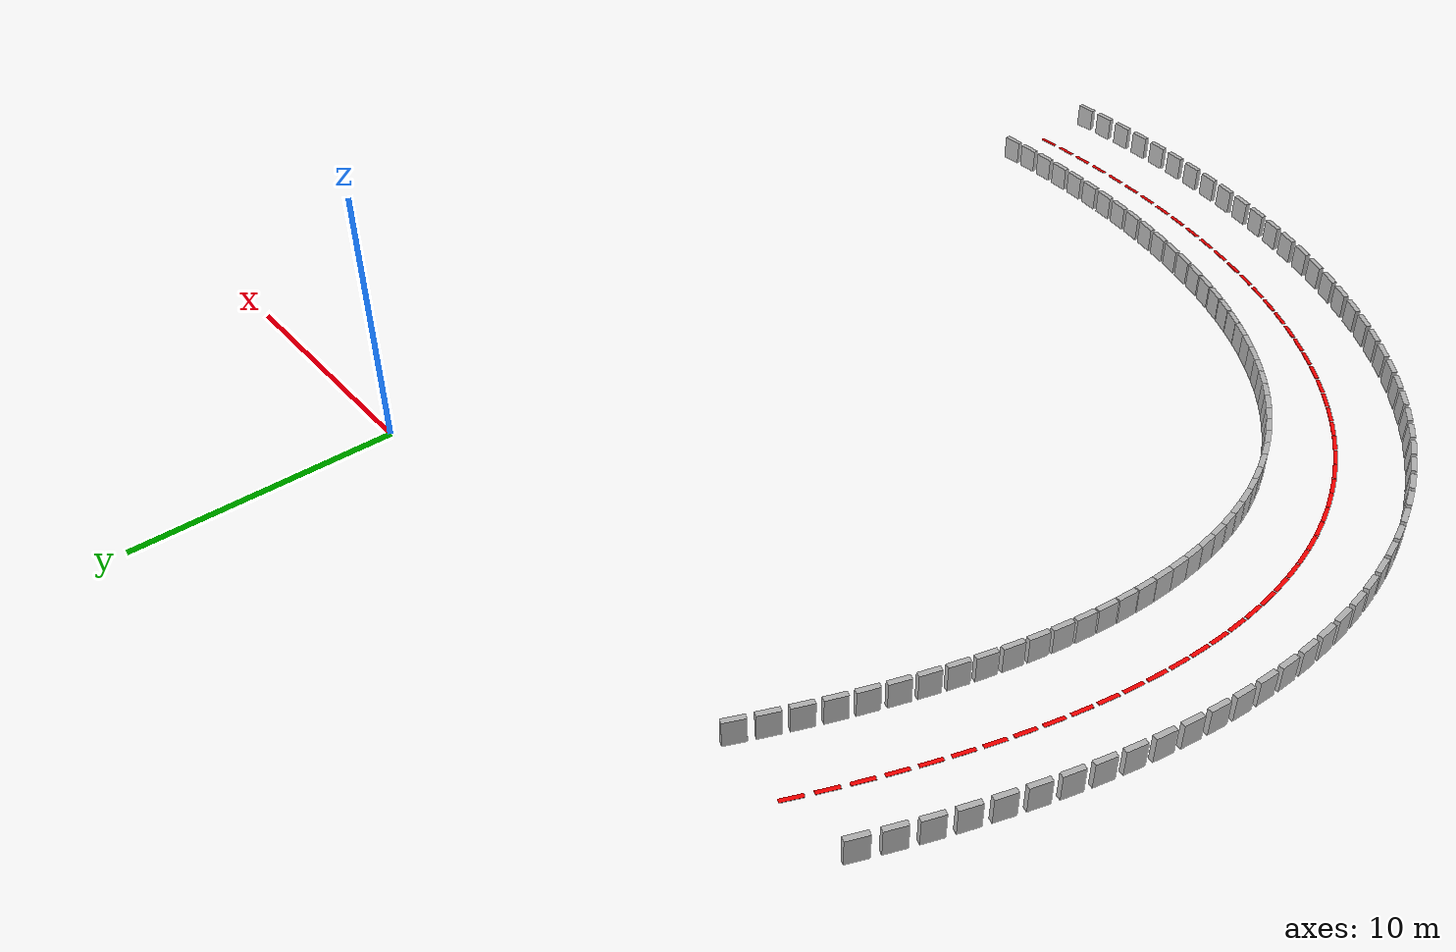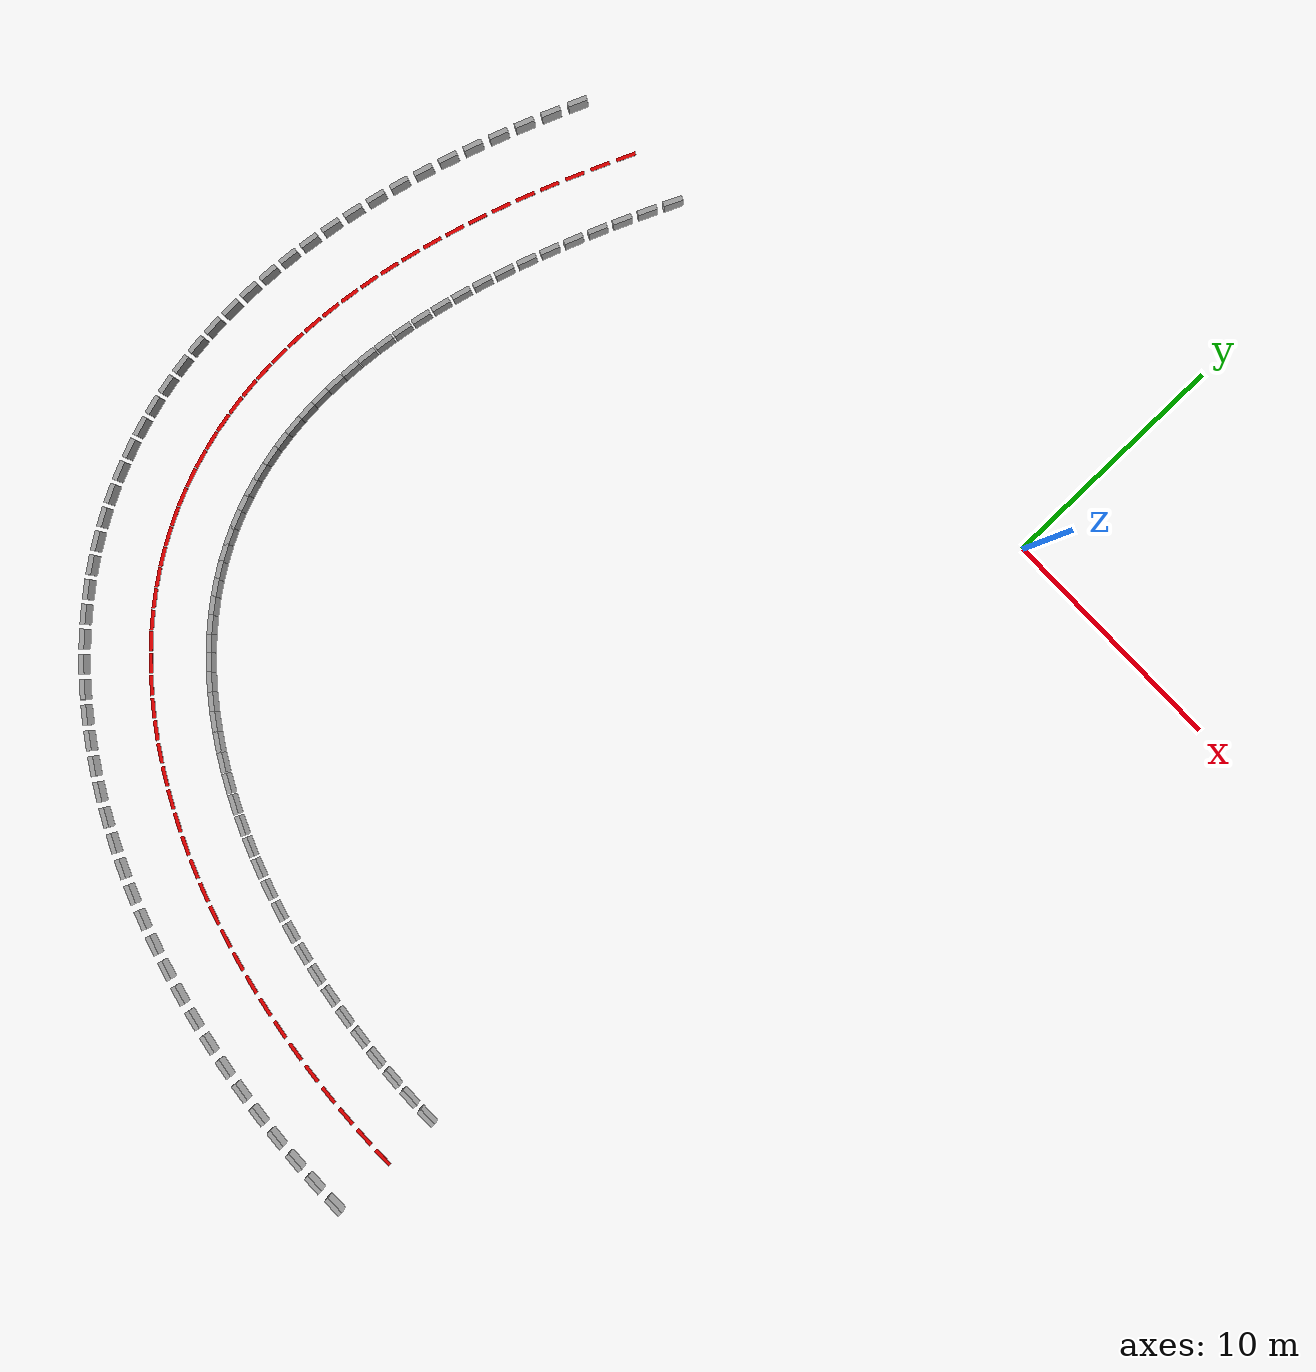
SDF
<sdf version="1.7">
 <model name="track_walls">
  <static>true</static>
  <link name="left_55">
   <pose>-0.289 -37.499 0.5 0 0 3.135</pose>
   <collision name="c"><geometry><box><size>0.8 0.2 1.0</size></box></geometry></collision>
   <visual name="v"><geometry><box><size>0.8 0.2 1.0</size></box></geometry></visual>
  </link>
  <link name="right_55">
   <pose>-0.256 -32.499 0.5 0 0 3.135</pose>
   <collision name="c"><geometry><box><size>0.8 0.2 1.0</size></box></geometry></collision>
   <visual name="v"><geometry><box><size>0.8 0.2 1.0</size></box></geometry></visual>
  </link>
  <link name="center_55">
   <pose>-0.273 -34.999 0.010 0 0 3.135</pose>
   <visual name="v">
    <geometry><box><size>0.8 0.15 0.02</size></box></geometry>
    <material><ambient>1 0 0 1</ambient><diffuse>1 0 0 1</diffuse></material>
   </visual>
  </link>
  <link name="left_56">
   <pose>-1.445 -37.476 0.5 0 0 3.109</pose>
   <collision name="c"><geometry><box><size>0.8 0.2 1.0</size></box></geometry></collision>
   <visual name="v"><geometry><box><size>0.8 0.2 1.0</size></box></geometry></visual>
  </link>
  <link name="right_56">
   <pose>-1.279 -32.479 0.5 0 0 3.109</pose>
   <collision name="c"><geometry><box><size>0.8 0.2 1.0</size></box></geometry></collision>
   <visual name="v"><geometry><box><size>0.8 0.2 1.0</size></box></geometry></visual>
  </link>
  <link name="center_56">
   <pose>-1.362 -34.977 0.010 0 0 3.109</pose>
   <visual name="v">
    <geometry><box><size>0.8 0.15 0.02</size></box></geometry>
    <material><ambient>1 0 0 1</ambient><diffuse>1 0 0 1</diffuse></material>
   </visual>
  </link>
  <link name="left_57">
   <pose>-2.598 -37.423 0.5 0 0 3.082</pose>
   <collision name="c"><geometry><box><size>0.8 0.2 1.0</size></box></geometry></collision>
   <visual name="v"><geometry><box><size>0.8 0.2 1.0</size></box></geometry></visual>
  </link>
  <link name="right_57">
   <pose>-2.300 -32.432 0.5 0 0 3.082</pose>
   <collision name="c"><geometry><box><size>0.8 0.2 1.0</size></box></geometry></collision>
   <visual name="v"><geometry><box><size>0.8 0.2 1.0</size></box></geometry></visual>
  </link>
  <link name="center_57">
   <pose>-2.449 -34.927 0.010 0 0 3.082</pose>
   <visual name="v">
    <geometry><box><size>0.8 0.15 0.02</size></box></geometry>
    <material><ambient>1 0 0 1</ambient><diffuse>1 0 0 1</diffuse></material>
   </visual>
  </link>
  <link name="left_58">
   <pose>-3.747 -37.339 0.5 0 0 3.055</pose>
   <collision name="c"><geometry><box><size>0.8 0.2 1.0</size></box></geometry></collision>
   <visual name="v"><geometry><box><size>0.8 0.2 1.0</size></box></geometry></visual>
  </link>
  <link name="right_58">
   <pose>-3.316 -32.357 0.5 0 0 3.055</pose>
   <collision name="c"><geometry><box><size>0.8 0.2 1.0</size></box></geometry></collision>
   <visual name="v"><geometry><box><size>0.8 0.2 1.0</size></box></geometry></visual>
  </link>
  <link name="center_58">
   <pose>-3.532 -34.848 0.010 0 0 3.055</pose>
   <visual name="v">
    <geometry><box><size>0.8 0.15 0.02</size></box></geometry>
    <material><ambient>1 0 0 1</ambient><diffuse>1 0 0 1</diffuse></material>
   </visual>
  </link>
  <link name="left_59">
   <pose>-4.891 -37.224 0.5 0 0 3.028</pose>
   <collision name="c"><geometry><box><size>0.8 0.2 1.0</size></box></geometry></collision>
   <visual name="v"><geometry><box><size>0.8 0.2 1.0</size></box></geometry></visual>
  </link>
  <link name="right_59">
   <pose>-4.325 -32.256 0.5 0 0 3.028</pose>
   <collision name="c"><geometry><box><size>0.8 0.2 1.0</size></box></geometry></collision>
   <visual name="v"><geometry><box><size>0.8 0.2 1.0</size></box></geometry></visual>
  </link>
  <link name="center_59">
   <pose>-4.608 -34.740 0.010 0 0 3.028</pose>
   <visual name="v">
    <geometry><box><size>0.8 0.15 0.02</size></box></geometry>
    <material><ambient>1 0 0 1</ambient><diffuse>1 0 0 1</diffuse></material>
   </visual>
  </link>
  <link name="left_60">
   <pose>-6.026 -37.079 0.5 0 0 3.001</pose>
   <collision name="c"><geometry><box><size>0.8 0.2 1.0</size></box></geometry></collision>
   <visual name="v"><geometry><box><size>0.8 0.2 1.0</size></box></geometry></visual>
  </link>
  <link name="right_60">
   <pose>-5.324 -32.128 0.5 0 0 3.001</pose>
   <collision name="c"><geometry><box><size>0.8 0.2 1.0</size></box></geometry></collision>
   <visual name="v"><geometry><box><size>0.8 0.2 1.0</size></box></geometry></visual>
  </link>
  <link name="center_60">
   <pose>-5.675 -34.604 0.010 0 0 3.001</pose>
   <visual name="v">
    <geometry><box><size>0.8 0.15 0.02</size></box></geometry>
    <material><ambient>1 0 0 1</ambient><diffuse>1 0 0 1</diffuse></material>
   </visual>
  </link>
  <link name="left_61">
   <pose>-7.152 -36.903 0.5 0 0 2.973</pose>
   <collision name="c"><geometry><box><size>0.8 0.2 1.0</size></box></geometry></collision>
   <visual name="v"><geometry><box><size>0.8 0.2 1.0</size></box></geometry></visual>
  </link>
  <link name="right_61">
   <pose>-6.312 -31.974 0.5 0 0 2.973</pose>
   <collision name="c"><geometry><box><size>0.8 0.2 1.0</size></box></geometry></collision>
   <visual name="v"><geometry><box><size>0.8 0.2 1.0</size></box></geometry></visual>
  </link>
  <link name="center_61">
   <pose>-6.732 -34.439 0.010 0 0 2.973</pose>
   <visual name="v">
    <geometry><box><size>0.8 0.15 0.02</size></box></geometry>
    <material><ambient>1 0 0 1</ambient><diffuse>1 0 0 1</diffuse></material>
   </visual>
  </link>
  <link name="left_62">
   <pose>-8.266 -36.697 0.5 0 0 2.944</pose>
   <collision name="c"><geometry><box><size>0.8 0.2 1.0</size></box></geometry></collision>
   <visual name="v"><geometry><box><size>0.8 0.2 1.0</size></box></geometry></visual>
  </link>
  <link name="right_62">
   <pose>-7.286 -31.794 0.5 0 0 2.944</pose>
   <collision name="c"><geometry><box><size>0.8 0.2 1.0</size></box></geometry></collision>
   <visual name="v"><geometry><box><size>0.8 0.2 1.0</size></box></geometry></visual>
  </link>
  <link name="center_62">
   <pose>-7.776 -34.246 0.010 0 0 2.944</pose>
   <visual name="v">
    <geometry><box><size>0.8 0.15 0.02</size></box></geometry>
    <material><ambient>1 0 0 1</ambient><diffuse>1 0 0 1</diffuse></material>
   </visual>
  </link>
  <link name="left_63">
   <pose>-9.367 -36.460 0.5 0 0 2.915</pose>
   <collision name="c"><geometry><box><size>0.8 0.2 1.0</size></box></geometry></collision>
   <visual name="v"><geometry><box><size>0.8 0.2 1.0</size></box></geometry></visual>
  </link>
  <link name="right_63">
   <pose>-8.245 -31.588 0.5 0 0 2.915</pose>
   <collision name="c"><geometry><box><size>0.8 0.2 1.0</size></box></geometry></collision>
   <visual name="v"><geometry><box><size>0.8 0.2 1.0</size></box></geometry></visual>
  </link>
  <link name="center_63">
   <pose>-8.806 -34.024 0.010 0 0 2.915</pose>
   <visual name="v">
    <geometry><box><size>0.8 0.15 0.02</size></box></geometry>
    <material><ambient>1 0 0 1</ambient><diffuse>1 0 0 1</diffuse></material>
   </visual>
  </link>
  <link name="left_64">
   <pose>-10.454 -36.193 0.5 0 0 2.885</pose>
   <collision name="c"><geometry><box><size>0.8 0.2 1.0</size></box></geometry></collision>
   <visual name="v"><geometry><box><size>0.8 0.2 1.0</size></box></geometry></visual>
  </link>
  <link name="right_64">
   <pose>-9.186 -31.356 0.5 0 0 2.885</pose>
   <collision name="c"><geometry><box><size>0.8 0.2 1.0</size></box></geometry></collision>
   <visual name="v"><geometry><box><size>0.8 0.2 1.0</size></box></geometry></visual>
  </link>
  <link name="center_64">
   <pose>-9.820 -33.775 0.010 0 0 2.885</pose>
   <visual name="v">
    <geometry><box><size>0.8 0.15 0.02</size></box></geometry>
    <material><ambient>1 0 0 1</ambient><diffuse>1 0 0 1</diffuse></material>
   </visual>
  </link>
  <link name="left_65">
   <pose>-11.523 -35.895 0.5 0 0 2.855</pose>
   <collision name="c"><geometry><box><size>0.8 0.2 1.0</size></box></geometry></collision>
   <visual name="v"><geometry><box><size>0.8 0.2 1.0</size></box></geometry></visual>
  </link>
  <link name="right_65">
   <pose>-10.108 -31.100 0.5 0 0 2.855</pose>
   <collision name="c"><geometry><box><size>0.8 0.2 1.0</size></box></geometry></collision>
   <visual name="v"><geometry><box><size>0.8 0.2 1.0</size></box></geometry></visual>
  </link>
  <link name="center_65">
   <pose>-10.815 -33.497 0.010 0 0 2.855</pose>
   <visual name="v">
    <geometry><box><size>0.8 0.15 0.02</size></box></geometry>
    <material><ambient>1 0 0 1</ambient><diffuse>1 0 0 1</diffuse></material>
   </visual>
  </link>
  <link name="left_66">
   <pose>-12.575 -35.567 0.5 0 0 2.823</pose>
   <collision name="c"><geometry><box><size>0.8 0.2 1.0</size></box></geometry></collision>
   <visual name="v"><geometry><box><size>0.8 0.2 1.0</size></box></geometry></visual>
  </link>
  <link name="right_66">
   <pose>-11.008 -30.819 0.5 0 0 2.823</pose>
   <collision name="c"><geometry><box><size>0.8 0.2 1.0</size></box></geometry></collision>
   <visual name="v"><geometry><box><size>0.8 0.2 1.0</size></box></geometry></visual>
  </link>
  <link name="center_66">
   <pose>-11.791 -33.193 0.010 0 0 2.823</pose>
   <visual name="v">
    <geometry><box><size>0.8 0.15 0.02</size></box></geometry>
    <material><ambient>1 0 0 1</ambient><diffuse>1 0 0 1</diffuse></material>
   </visual>
  </link>
  <link name="left_67">
   <pose>-13.606 -35.208 0.5 0 0 2.790</pose>
   <collision name="c"><geometry><box><size>0.8 0.2 1.0</size></box></geometry></collision>
   <visual name="v"><geometry><box><size>0.8 0.2 1.0</size></box></geometry></visual>
  </link>
  <link name="right_67">
   <pose>-11.885 -30.513 0.5 0 0 2.790</pose>
   <collision name="c"><geometry><box><size>0.8 0.2 1.0</size></box></geometry></collision>
   <visual name="v"><geometry><box><size>0.8 0.2 1.0</size></box></geometry></visual>
  </link>
  <link name="center_67">
   <pose>-12.745 -32.861 0.010 0 0 2.790</pose>
   <visual name="v">
    <geometry><box><size>0.8 0.15 0.02</size></box></geometry>
    <material><ambient>1 0 0 1</ambient><diffuse>1 0 0 1</diffuse></material>
   </visual>
  </link>
  <link name="left_68">
   <pose>-14.616 -34.818 0.5 0 0 2.756</pose>
   <collision name="c"><geometry><box><size>0.8 0.2 1.0</size></box></geometry></collision>
   <visual name="v"><geometry><box><size>0.8 0.2 1.0</size></box></geometry></visual>
  </link>
  <link name="right_68">
   <pose>-12.737 -30.185 0.5 0 0 2.756</pose>
   <collision name="c"><geometry><box><size>0.8 0.2 1.0</size></box></geometry></collision>
   <visual name="v"><geometry><box><size>0.8 0.2 1.0</size></box></geometry></visual>
  </link>
  <link name="center_68">
   <pose>-13.676 -32.501 0.010 0 0 2.756</pose>
   <visual name="v">
    <geometry><box><size>0.8 0.15 0.02</size></box></geometry>
    <material><ambient>1 0 0 1</ambient><diffuse>1 0 0 1</diffuse></material>
   </visual>
  </link>
  <link name="left_69">
   <pose>-15.603 -34.398 0.5 0 0 2.721</pose>
   <collision name="c"><geometry><box><size>0.8 0.2 1.0</size></box></geometry></collision>
   <visual name="v"><geometry><box><size>0.8 0.2 1.0</size></box></geometry></visual>
  </link>
  <link name="right_69">
   <pose>-13.562 -29.833 0.5 0 0 2.721</pose>
   <collision name="c"><geometry><box><size>0.8 0.2 1.0</size></box></geometry></collision>
   <visual name="v"><geometry><box><size>0.8 0.2 1.0</size></box></geometry></visual>
  </link>
  <link name="center_69">
   <pose>-14.582 -32.115 0.010 0 0 2.721</pose>
   <visual name="v">
    <geometry><box><size>0.8 0.15 0.02</size></box></geometry>
    <material><ambient>1 0 0 1</ambient><diffuse>1 0 0 1</diffuse></material>
   </visual>
  </link>
  <link name="left_70">
   <pose>-16.565 -33.947 0.5 0 0 2.685</pose>
   <collision name="c"><geometry><box><size>0.8 0.2 1.0</size></box></geometry></collision>
   <visual name="v"><geometry><box><size>0.8 0.2 1.0</size></box></geometry></visual>
  </link>
  <link name="right_70">
   <pose>-14.360 -29.459 0.5 0 0 2.685</pose>
   <collision name="c"><geometry><box><size>0.8 0.2 1.0</size></box></geometry></collision>
   <visual name="v"><geometry><box><size>0.8 0.2 1.0</size></box></geometry></visual>
  </link>
  <link name="center_70">
   <pose>-15.462 -31.703 0.010 0 0 2.685</pose>
   <visual name="v">
    <geometry><box><size>0.8 0.15 0.02</size></box></geometry>
    <material><ambient>1 0 0 1</ambient><diffuse>1 0 0 1</diffuse></material>
   </visual>
  </link>
  <link name="left_71">
   <pose>-17.500 -33.465 0.5 0 0 2.647</pose>
   <collision name="c"><geometry><box><size>0.8 0.2 1.0</size></box></geometry></collision>
   <visual name="v"><geometry><box><size>0.8 0.2 1.0</size></box></geometry></visual>
  </link>
  <link name="right_71">
   <pose>-15.127 -29.064 0.5 0 0 2.647</pose>
   <collision name="c"><geometry><box><size>0.8 0.2 1.0</size></box></geometry></collision>
   <visual name="v"><geometry><box><size>0.8 0.2 1.0</size></box></geometry></visual>
  </link>
  <link name="center_71">
   <pose>-16.314 -31.265 0.010 0 0 2.647</pose>
   <visual name="v">
    <geometry><box><size>0.8 0.15 0.02</size></box></geometry>
    <material><ambient>1 0 0 1</ambient><diffuse>1 0 0 1</diffuse></material>
   </visual>
  </link>
  <link name="left_72">
   <pose>-18.408 -32.953 0.5 0 0 2.608</pose>
   <collision name="c"><geometry><box><size>0.8 0.2 1.0</size></box></geometry></collision>
   <visual name="v"><geometry><box><size>0.8 0.2 1.0</size></box></geometry></visual>
  </link>
  <link name="right_72">
   <pose>-15.865 -28.648 0.5 0 0 2.608</pose>
   <collision name="c"><geometry><box><size>0.8 0.2 1.0</size></box></geometry></collision>
   <visual name="v"><geometry><box><size>0.8 0.2 1.0</size></box></geometry></visual>
  </link>
  <link name="center_72">
   <pose>-17.136 -30.800 0.010 0 0 2.608</pose>
   <visual name="v">
    <geometry><box><size>0.8 0.15 0.02</size></box></geometry>
    <material><ambient>1 0 0 1</ambient><diffuse>1 0 0 1</diffuse></material>
   </visual>
  </link>
  <link name="left_73">
   <pose>-19.286 -32.410 0.5 0 0 2.567</pose>
   <collision name="c"><geometry><box><size>0.8 0.2 1.0</size></box></geometry></collision>
   <visual name="v"><geometry><box><size>0.8 0.2 1.0</size></box></geometry></visual>
  </link>
  <link name="right_73">
   <pose>-16.570 -28.212 0.5 0 0 2.567</pose>
   <collision name="c"><geometry><box><size>0.8 0.2 1.0</size></box></geometry></collision>
   <visual name="v"><geometry><box><size>0.8 0.2 1.0</size></box></geometry></visual>
  </link>
  <link name="center_73">
   <pose>-17.928 -30.311 0.010 0 0 2.567</pose>
   <visual name="v">
    <geometry><box><size>0.8 0.15 0.02</size></box></geometry>
    <material><ambient>1 0 0 1</ambient><diffuse>1 0 0 1</diffuse></material>
   </visual>
  </link>
  <link name="left_74">
   <pose>-20.133 -31.836 0.5 0 0 2.525</pose>
   <collision name="c"><geometry><box><size>0.8 0.2 1.0</size></box></geometry></collision>
   <visual name="v"><geometry><box><size>0.8 0.2 1.0</size></box></geometry></visual>
  </link>
  <link name="right_74">
   <pose>-17.243 -27.756 0.5 0 0 2.525</pose>
   <collision name="c"><geometry><box><size>0.8 0.2 1.0</size></box></geometry></collision>
   <visual name="v"><geometry><box><size>0.8 0.2 1.0</size></box></geometry></visual>
  </link>
  <link name="center_74">
   <pose>-18.688 -29.796 0.010 0 0 2.525</pose>
   <visual name="v">
    <geometry><box><size>0.8 0.15 0.02</size></box></geometry>
    <material><ambient>1 0 0 1</ambient><diffuse>1 0 0 1</diffuse></material>
   </visual>
  </link>
  <link name="left_75">
   <pose>-20.948 -31.232 0.5 0 0 2.482</pose>
   <collision name="c"><geometry><box><size>0.8 0.2 1.0</size></box></geometry></collision>
   <visual name="v"><geometry><box><size>0.8 0.2 1.0</size></box></geometry></visual>
  </link>
  <link name="right_75">
   <pose>-17.882 -27.282 0.5 0 0 2.482</pose>
   <collision name="c"><geometry><box><size>0.8 0.2 1.0</size></box></geometry></collision>
   <visual name="v"><geometry><box><size>0.8 0.2 1.0</size></box></geometry></visual>
  </link>
  <link name="center_75">
   <pose>-19.415 -29.257 0.010 0 0 2.482</pose>
   <visual name="v">
    <geometry><box><size>0.8 0.15 0.02</size></box></geometry>
    <material><ambient>1 0 0 1</ambient><diffuse>1 0 0 1</diffuse></material>
   </visual>
  </link>
  <link name="left_76">
   <pose>-21.729 -30.598 0.5 0 0 2.436</pose>
   <collision name="c"><geometry><box><size>0.8 0.2 1.0</size></box></geometry></collision>
   <visual name="v"><geometry><box><size>0.8 0.2 1.0</size></box></geometry></visual>
  </link>
  <link name="right_76">
   <pose>-18.488 -26.791 0.5 0 0 2.436</pose>
   <collision name="c"><geometry><box><size>0.8 0.2 1.0</size></box></geometry></collision>
   <visual name="v"><geometry><box><size>0.8 0.2 1.0</size></box></geometry></visual>
  </link>
  <link name="center_76">
   <pose>-20.108 -28.694 0.010 0 0 2.436</pose>
   <visual name="v">
    <geometry><box><size>0.8 0.15 0.02</size></box></geometry>
    <material><ambient>1 0 0 1</ambient><diffuse>1 0 0 1</diffuse></material>
   </visual>
  </link>
  <link name="left_77">
   <pose>-22.473 -29.934 0.5 0 0 2.390</pose>
   <collision name="c"><geometry><box><size>0.8 0.2 1.0</size></box></geometry></collision>
   <visual name="v"><geometry><box><size>0.8 0.2 1.0</size></box></geometry></visual>
  </link>
  <link name="right_77">
   <pose>-19.058 -26.282 0.5 0 0 2.390</pose>
   <collision name="c"><geometry><box><size>0.8 0.2 1.0</size></box></geometry></collision>
   <visual name="v"><geometry><box><size>0.8 0.2 1.0</size></box></geometry></visual>
  </link>
  <link name="center_77">
   <pose>-20.766 -28.108 0.010 0 0 2.390</pose>
   <visual name="v">
    <geometry><box><size>0.8 0.15 0.02</size></box></geometry>
    <material><ambient>1 0 0 1</ambient><diffuse>1 0 0 1</diffuse></material>
   </visual>
  </link>
  <link name="left_78">
   <pose>-23.181 -29.240 0.5 0 0 2.342</pose>
   <collision name="c"><geometry><box><size>0.8 0.2 1.0</size></box></geometry></collision>
   <visual name="v"><geometry><box><size>0.8 0.2 1.0</size></box></geometry></visual>
  </link>
  <link name="right_78">
   <pose>-19.595 -25.756 0.5 0 0 2.342</pose>
   <collision name="c"><geometry><box><size>0.8 0.2 1.0</size></box></geometry></collision>
   <visual name="v"><geometry><box><size>0.8 0.2 1.0</size></box></geometry></visual>
  </link>
  <link name="center_78">
   <pose>-21.388 -27.498 0.010 0 0 2.342</pose>
   <visual name="v">
    <geometry><box><size>0.8 0.15 0.02</size></box></geometry>
    <material><ambient>1 0 0 1</ambient><diffuse>1 0 0 1</diffuse></material>
   </visual>
  </link>
  <link name="left_79">
   <pose>-23.850 -28.517 0.5 0 0 2.292</pose>
   <collision name="c"><geometry><box><size>0.8 0.2 1.0</size></box></geometry></collision>
   <visual name="v"><geometry><box><size>0.8 0.2 1.0</size></box></geometry></visual>
  </link>
  <link name="right_79">
   <pose>-20.096 -25.214 0.5 0 0 2.292</pose>
   <collision name="c"><geometry><box><size>0.8 0.2 1.0</size></box></geometry></collision>
   <visual name="v"><geometry><box><size>0.8 0.2 1.0</size></box></geometry></visual>
  </link>
  <link name="center_79">
   <pose>-21.973 -26.865 0.010 0 0 2.292</pose>
   <visual name="v">
    <geometry><box><size>0.8 0.15 0.02</size></box></geometry>
    <material><ambient>1 0 0 1</ambient><diffuse>1 0 0 1</diffuse></material>
   </visual>
  </link>
  <link name="left_80">
   <pose>-24.478 -27.765 0.5 0 0 2.242</pose>
   <collision name="c"><geometry><box><size>0.8 0.2 1.0</size></box></geometry></collision>
   <visual name="v"><geometry><box><size>0.8 0.2 1.0</size></box></geometry></visual>
  </link>
  <link name="right_80">
   <pose>-20.562 -24.656 0.5 0 0 2.242</pose>
   <collision name="c"><geometry><box><size>0.8 0.2 1.0</size></box></geometry></collision>
   <visual name="v"><geometry><box><size>0.8 0.2 1.0</size></box></geometry></visual>
  </link>
  <link name="center_80">
   <pose>-22.520 -26.211 0.010 0 0 2.242</pose>
   <visual name="v">
    <geometry><box><size>0.8 0.15 0.02</size></box></geometry>
    <material><ambient>1 0 0 1</ambient><diffuse>1 0 0 1</diffuse></material>
   </visual>
  </link>
  <link name="left_81">
   <pose>-25.065 -26.987 0.5 0 0 2.191</pose>
   <collision name="c"><geometry><box><size>0.8 0.2 1.0</size></box></geometry></collision>
   <visual name="v"><geometry><box><size>0.8 0.2 1.0</size></box></geometry></visual>
  </link>
  <link name="right_81">
   <pose>-20.995 -24.082 0.5 0 0 2.191</pose>
   <collision name="c"><geometry><box><size>0.8 0.2 1.0</size></box></geometry></collision>
   <visual name="v"><geometry><box><size>0.8 0.2 1.0</size></box></geometry></visual>
  </link>
  <link name="center_81">
   <pose>-23.030 -25.535 0.010 0 0 2.191</pose>
   <visual name="v">
    <geometry><box><size>0.8 0.15 0.02</size></box></geometry>
    <material><ambient>1 0 0 1</ambient><diffuse>1 0 0 1</diffuse></material>
   </visual>
  </link>
  <link name="left_82">
   <pose>-25.608 -26.182 0.5 0 0 2.139</pose>
   <collision name="c"><geometry><box><size>0.8 0.2 1.0</size></box></geometry></collision>
   <visual name="v"><geometry><box><size>0.8 0.2 1.0</size></box></geometry></visual>
  </link>
  <link name="right_82">
   <pose>-21.392 -23.493 0.5 0 0 2.139</pose>
   <collision name="c"><geometry><box><size>0.8 0.2 1.0</size></box></geometry></collision>
   <visual name="v"><geometry><box><size>0.8 0.2 1.0</size></box></geometry></visual>
  </link>
  <link name="center_82">
   <pose>-23.500 -24.837 0.010 0 0 2.139</pose>
   <visual name="v">
    <geometry><box><size>0.8 0.15 0.02</size></box></geometry>
    <material><ambient>1 0 0 1</ambient><diffuse>1 0 0 1</diffuse></material>
   </visual>
  </link>
  <link name="left_83">
   <pose>-26.107 -25.351 0.5 0 0 2.086</pose>
   <collision name="c"><geometry><box><size>0.8 0.2 1.0</size></box></geometry></collision>
   <visual name="v"><geometry><box><size>0.8 0.2 1.0</size></box></geometry></visual>
  </link>
  <link name="right_83">
   <pose>-21.756 -22.888 0.5 0 0 2.086</pose>
   <collision name="c"><geometry><box><size>0.8 0.2 1.0</size></box></geometry></collision>
   <visual name="v"><geometry><box><size>0.8 0.2 1.0</size></box></geometry></visual>
  </link>
  <link name="center_83">
   <pose>-23.932 -24.120 0.010 0 0 2.086</pose>
   <visual name="v">
    <geometry><box><size>0.8 0.15 0.02</size></box></geometry>
    <material><ambient>1 0 0 1</ambient><diffuse>1 0 0 1</diffuse></material>
   </visual>
  </link>
  <link name="left_84">
   <pose>-26.562 -24.497 0.5 0 0 2.033</pose>
   <collision name="c"><geometry><box><size>0.8 0.2 1.0</size></box></geometry></collision>
   <visual name="v"><geometry><box><size>0.8 0.2 1.0</size></box></geometry></visual>
  </link>
  <link name="right_84">
   <pose>-22.087 -22.267 0.5 0 0 2.033</pose>
   <collision name="c"><geometry><box><size>0.8 0.2 1.0</size></box></geometry></collision>
   <visual name="v"><geometry><box><size>0.8 0.2 1.0</size></box></geometry></visual>
  </link>
  <link name="center_84">
   <pose>-24.324 -23.382 0.010 0 0 2.033</pose>
   <visual name="v">
    <geometry><box><size>0.8 0.15 0.02</size></box></geometry>
    <material><ambient>1 0 0 1</ambient><diffuse>1 0 0 1</diffuse></material>
   </visual>
  </link>
  <link name="left_85">
   <pose>-26.970 -23.621 0.5 0 0 1.980</pose>
   <collision name="c"><geometry><box><size>0.8 0.2 1.0</size></box></geometry></collision>
   <visual name="v"><geometry><box><size>0.8 0.2 1.0</size></box></geometry></visual>
  </link>
  <link name="right_85">
   <pose>-22.383 -21.630 0.5 0 0 1.980</pose>
   <collision name="c"><geometry><box><size>0.8 0.2 1.0</size></box></geometry></collision>
   <visual name="v"><geometry><box><size>0.8 0.2 1.0</size></box></geometry></visual>
  </link>
  <link name="center_85">
   <pose>-24.677 -22.626 0.010 0 0 1.980</pose>
   <visual name="v">
    <geometry><box><size>0.8 0.15 0.02</size></box></geometry>
    <material><ambient>1 0 0 1</ambient><diffuse>1 0 0 1</diffuse></material>
   </visual>
  </link>
  <link name="left_86">
   <pose>-27.331 -22.725 0.5 0 0 1.928</pose>
   <collision name="c"><geometry><box><size>0.8 0.2 1.0</size></box></geometry></collision>
   <visual name="v"><geometry><box><size>0.8 0.2 1.0</size></box></geometry></visual>
  </link>
  <link name="right_86">
   <pose>-22.647 -20.976 0.5 0 0 1.928</pose>
   <collision name="c"><geometry><box><size>0.8 0.2 1.0</size></box></geometry></collision>
   <visual name="v"><geometry><box><size>0.8 0.2 1.0</size></box></geometry></visual>
  </link>
  <link name="center_86">
   <pose>-24.989 -21.850 0.010 0 0 1.928</pose>
   <visual name="v">
    <geometry><box><size>0.8 0.15 0.02</size></box></geometry>
    <material><ambient>1 0 0 1</ambient><diffuse>1 0 0 1</diffuse></material>
   </visual>
  </link>
  <link name="left_87">
   <pose>-27.646 -21.809 0.5 0 0 1.876</pose>
   <collision name="c"><geometry><box><size>0.8 0.2 1.0</size></box></geometry></collision>
   <visual name="v"><geometry><box><size>0.8 0.2 1.0</size></box></geometry></visual>
  </link>
  <link name="right_87">
   <pose>-22.878 -20.305 0.5 0 0 1.876</pose>
   <collision name="c"><geometry><box><size>0.8 0.2 1.0</size></box></geometry></collision>
   <visual name="v"><geometry><box><size>0.8 0.2 1.0</size></box></geometry></visual>
  </link>
  <link name="center_87">
   <pose>-25.262 -21.057 0.010 0 0 1.876</pose>
   <visual name="v">
    <geometry><box><size>0.8 0.15 0.02</size></box></geometry>
    <material><ambient>1 0 0 1</ambient><diffuse>1 0 0 1</diffuse></material>
   </visual>
  </link>
  <link name="left_88">
   <pose>-27.915 -20.876 0.5 0 0 1.826</pose>
   <collision name="c"><geometry><box><size>0.8 0.2 1.0</size></box></geometry></collision>
   <visual name="v"><geometry><box><size>0.8 0.2 1.0</size></box></geometry></visual>
  </link>
  <link name="right_88">
   <pose>-23.076 -19.616 0.5 0 0 1.826</pose>
   <collision name="c"><geometry><box><size>0.8 0.2 1.0</size></box></geometry></collision>
   <visual name="v"><geometry><box><size>0.8 0.2 1.0</size></box></geometry></visual>
  </link>
  <link name="center_88">
   <pose>-25.495 -20.246 0.010 0 0 1.826</pose>
   <visual name="v">
    <geometry><box><size>0.8 0.15 0.02</size></box></geometry>
    <material><ambient>1 0 0 1</ambient><diffuse>1 0 0 1</diffuse></material>
   </visual>
  </link>
  <link name="left_89">
   <pose>-28.136 -19.928 0.5 0 0 1.776</pose>
   <collision name="c"><geometry><box><size>0.8 0.2 1.0</size></box></geometry></collision>
   <visual name="v"><geometry><box><size>0.8 0.2 1.0</size></box></geometry></visual>
  </link>
  <link name="right_89">
   <pose>-23.241 -18.910 0.5 0 0 1.776</pose>
   <collision name="c"><geometry><box><size>0.8 0.2 1.0</size></box></geometry></collision>
   <visual name="v"><geometry><box><size>0.8 0.2 1.0</size></box></geometry></visual>
  </link>
  <link name="center_89">
   <pose>-25.689 -19.419 0.010 0 0 1.776</pose>
   <visual name="v">
    <geometry><box><size>0.8 0.15 0.02</size></box></geometry>
    <material><ambient>1 0 0 1</ambient><diffuse>1 0 0 1</diffuse></material>
   </visual>
  </link>
  <link name="left_90">
   <pose>-28.312 -18.966 0.5 0 0 1.728</pose>
   <collision name="c"><geometry><box><size>0.8 0.2 1.0</size></box></geometry></collision>
   <visual name="v"><geometry><box><size>0.8 0.2 1.0</size></box></geometry></visual>
  </link>
  <link name="right_90">
   <pose>-23.374 -18.185 0.5 0 0 1.728</pose>
   <collision name="c"><geometry><box><size>0.8 0.2 1.0</size></box></geometry></collision>
   <visual name="v"><geometry><box><size>0.8 0.2 1.0</size></box></geometry></visual>
  </link>
  <link name="center_90">
   <pose>-25.843 -18.576 0.010 0 0 1.728</pose>
   <visual name="v">
    <geometry><box><size>0.8 0.15 0.02</size></box></geometry>
    <material><ambient>1 0 0 1</ambient><diffuse>1 0 0 1</diffuse></material>
   </visual>
  </link>
  <link name="left_91">
   <pose>-28.443 -17.992 0.5 0 0 1.681</pose>
   <collision name="c"><geometry><box><size>0.8 0.2 1.0</size></box></geometry></collision>
   <visual name="v"><geometry><box><size>0.8 0.2 1.0</size></box></geometry></visual>
  </link>
  <link name="right_91">
   <pose>-23.473 -17.442 0.5 0 0 1.681</pose>
   <collision name="c"><geometry><box><size>0.8 0.2 1.0</size></box></geometry></collision>
   <visual name="v"><geometry><box><size>0.8 0.2 1.0</size></box></geometry></visual>
  </link>
  <link name="center_91">
   <pose>-25.958 -17.717 0.010 0 0 1.681</pose>
   <visual name="v">
    <geometry><box><size>0.8 0.15 0.02</size></box></geometry>
    <material><ambient>1 0 0 1</ambient><diffuse>1 0 0 1</diffuse></material>
   </visual>
  </link>
  <link name="left_92">
   <pose>-28.529 -17.007 0.5 0 0 1.636</pose>
   <collision name="c"><geometry><box><size>0.8 0.2 1.0</size></box></geometry></collision>
   <visual name="v"><geometry><box><size>0.8 0.2 1.0</size></box></geometry></visual>
  </link>
  <link name="right_92">
   <pose>-23.540 -16.681 0.5 0 0 1.636</pose>
   <collision name="c"><geometry><box><size>0.8 0.2 1.0</size></box></geometry></collision>
   <visual name="v"><geometry><box><size>0.8 0.2 1.0</size></box></geometry></visual>
  </link>
  <link name="center_92">
   <pose>-26.035 -16.844 0.010 0 0 1.636</pose>
   <visual name="v">
    <geometry><box><size>0.8 0.15 0.02</size></box></geometry>
    <material><ambient>1 0 0 1</ambient><diffuse>1 0 0 1</diffuse></material>
   </visual>
  </link>
  <link name="left_93">
   <pose>-28.572 -16.012 0.5 0 0 1.593</pose>
   <collision name="c"><geometry><box><size>0.8 0.2 1.0</size></box></geometry></collision>
   <visual name="v"><geometry><box><size>0.8 0.2 1.0</size></box></geometry></visual>
  </link>
  <link name="right_93">
   <pose>-23.574 -15.902 0.5 0 0 1.593</pose>
   <collision name="c"><geometry><box><size>0.8 0.2 1.0</size></box></geometry></collision>
   <visual name="v"><geometry><box><size>0.8 0.2 1.0</size></box></geometry></visual>
  </link>
  <link name="center_93">
   <pose>-26.073 -15.957 0.010 0 0 1.593</pose>
   <visual name="v">
    <geometry><box><size>0.8 0.15 0.02</size></box></geometry>
    <material><ambient>1 0 0 1</ambient><diffuse>1 0 0 1</diffuse></material>
   </visual>
  </link>
  <link name="left_94">
   <pose>-28.573 -15.008 0.5 0 0 1.551</pose>
   <collision name="c"><geometry><box><size>0.8 0.2 1.0</size></box></geometry></collision>
   <visual name="v"><geometry><box><size>0.8 0.2 1.0</size></box></geometry></visual>
  </link>
  <link name="right_94">
   <pose>-23.574 -15.105 0.5 0 0 1.551</pose>
   <collision name="c"><geometry><box><size>0.8 0.2 1.0</size></box></geometry></collision>
   <visual name="v"><geometry><box><size>0.8 0.2 1.0</size></box></geometry></visual>
  </link>
  <link name="center_94">
   <pose>-26.074 -15.057 0.010 0 0 1.551</pose>
   <visual name="v">
    <geometry><box><size>0.8 0.15 0.02</size></box></geometry>
    <material><ambient>1 0 0 1</ambient><diffuse>1 0 0 1</diffuse></material>
   </visual>
  </link>
  <link name="left_95">
   <pose>-28.534 -13.997 0.5 0 0 1.512</pose>
   <collision name="c"><geometry><box><size>0.8 0.2 1.0</size></box></geometry></collision>
   <visual name="v"><geometry><box><size>0.8 0.2 1.0</size></box></geometry></visual>
  </link>
  <link name="right_95">
   <pose>-23.542 -14.290 0.5 0 0 1.512</pose>
   <collision name="c"><geometry><box><size>0.8 0.2 1.0</size></box></geometry></collision>
   <visual name="v"><geometry><box><size>0.8 0.2 1.0</size></box></geometry></visual>
  </link>
  <link name="center_95">
   <pose>-26.038 -14.144 0.010 0 0 1.512</pose>
   <visual name="v">
    <geometry><box><size>0.8 0.15 0.02</size></box></geometry>
    <material><ambient>1 0 0 1</ambient><diffuse>1 0 0 1</diffuse></material>
   </visual>
  </link>
  <link name="left_96">
   <pose>-28.455 -12.980 0.5 0 0 1.475</pose>
   <collision name="c"><geometry><box><size>0.8 0.2 1.0</size></box></geometry></collision>
   <visual name="v"><geometry><box><size>0.8 0.2 1.0</size></box></geometry></visual>
  </link>
  <link name="right_96">
   <pose>-23.478 -13.459 0.5 0 0 1.475</pose>
   <collision name="c"><geometry><box><size>0.8 0.2 1.0</size></box></geometry></collision>
   <visual name="v"><geometry><box><size>0.8 0.2 1.0</size></box></geometry></visual>
  </link>
  <link name="center_96">
   <pose>-25.966 -13.220 0.010 0 0 1.475</pose>
   <visual name="v">
    <geometry><box><size>0.8 0.15 0.02</size></box></geometry>
    <material><ambient>1 0 0 1</ambient><diffuse>1 0 0 1</diffuse></material>
   </visual>
  </link>
  <link name="left_97">
   <pose>-28.337 -11.957 0.5 0 0 1.439</pose>
   <collision name="c"><geometry><box><size>0.8 0.2 1.0</size></box></geometry></collision>
   <visual name="v"><geometry><box><size>0.8 0.2 1.0</size></box></geometry></visual>
  </link>
  <link name="right_97">
   <pose>-23.380 -12.612 0.5 0 0 1.439</pose>
   <collision name="c"><geometry><box><size>0.8 0.2 1.0</size></box></geometry></collision>
   <visual name="v"><geometry><box><size>0.8 0.2 1.0</size></box></geometry></visual>
  </link>
  <link name="center_97">
   <pose>-25.859 -12.285 0.010 0 0 1.439</pose>
   <visual name="v">
    <geometry><box><size>0.8 0.15 0.02</size></box></geometry>
    <material><ambient>1 0 0 1</ambient><diffuse>1 0 0 1</diffuse></material>
   </visual>
  </link>
  <link name="left_98">
   <pose>-28.184 -10.929 0.5 0 0 1.406</pose>
   <collision name="c"><geometry><box><size>0.8 0.2 1.0</size></box></geometry></collision>
   <visual name="v"><geometry><box><size>0.8 0.2 1.0</size></box></geometry></visual>
  </link>
  <link name="right_98">
   <pose>-23.251 -11.750 0.5 0 0 1.406</pose>
   <collision name="c"><geometry><box><size>0.8 0.2 1.0</size></box></geometry></collision>
   <visual name="v"><geometry><box><size>0.8 0.2 1.0</size></box></geometry></visual>
  </link>
  <link name="center_98">
   <pose>-25.718 -11.339 0.010 0 0 1.406</pose>
   <visual name="v">
    <geometry><box><size>0.8 0.15 0.02</size></box></geometry>
    <material><ambient>1 0 0 1</ambient><diffuse>1 0 0 1</diffuse></material>
   </visual>
  </link>
  <link name="left_99">
   <pose>-27.995 -9.897 0.5 0 0 1.374</pose>
   <collision name="c"><geometry><box><size>0.8 0.2 1.0</size></box></geometry></collision>
   <visual name="v"><geometry><box><size>0.8 0.2 1.0</size></box></geometry></visual>
  </link>
  <link name="right_99">
   <pose>-23.091 -10.873 0.5 0 0 1.374</pose>
   <collision name="c"><geometry><box><size>0.8 0.2 1.0</size></box></geometry></collision>
   <visual name="v"><geometry><box><size>0.8 0.2 1.0</size></box></geometry></visual>
  </link>
  <link name="center_99">
   <pose>-25.543 -10.385 0.010 0 0 1.374</pose>
   <visual name="v">
    <geometry><box><size>0.8 0.15 0.02</size></box></geometry>
    <material><ambient>1 0 0 1</ambient><diffuse>1 0 0 1</diffuse></material>
   </visual>
  </link>
  <link name="left_100">
   <pose>-27.772 -8.861 0.5 0 0 1.345</pose>
   <collision name="c"><geometry><box><size>0.8 0.2 1.0</size></box></geometry></collision>
   <visual name="v"><geometry><box><size>0.8 0.2 1.0</size></box></geometry></visual>
  </link>
  <link name="right_100">
   <pose>-22.900 -9.982 0.5 0 0 1.345</pose>
   <collision name="c"><geometry><box><size>0.8 0.2 1.0</size></box></geometry></collision>
   <visual name="v"><geometry><box><size>0.8 0.2 1.0</size></box></geometry></visual>
  </link>
  <link name="center_100">
   <pose>-25.336 -9.422 0.010 0 0 1.345</pose>
   <visual name="v">
    <geometry><box><size>0.8 0.15 0.02</size></box></geometry>
    <material><ambient>1 0 0 1</ambient><diffuse>1 0 0 1</diffuse></material>
   </visual>
  </link>
  <link name="left_101">
   <pose>-27.518 -7.823 0.5 0 0 1.317</pose>
   <collision name="c"><geometry><box><size>0.8 0.2 1.0</size></box></geometry></collision>
   <visual name="v"><geometry><box><size>0.8 0.2 1.0</size></box></geometry></visual>
  </link>
  <link name="right_101">
   <pose>-22.678 -9.079 0.5 0 0 1.317</pose>
   <collision name="c"><geometry><box><size>0.8 0.2 1.0</size></box></geometry></collision>
   <visual name="v"><geometry><box><size>0.8 0.2 1.0</size></box></geometry></visual>
  </link>
  <link name="center_101">
   <pose>-25.098 -8.451 0.010 0 0 1.317</pose>
   <visual name="v">
    <geometry><box><size>0.8 0.15 0.02</size></box></geometry>
    <material><ambient>1 0 0 1</ambient><diffuse>1 0 0 1</diffuse></material>
   </visual>
  </link>
  <link name="left_102">
   <pose>-27.233 -6.782 0.5 0 0 1.291</pose>
   <collision name="c"><geometry><box><size>0.8 0.2 1.0</size></box></geometry></collision>
   <visual name="v"><geometry><box><size>0.8 0.2 1.0</size></box></geometry></visual>
  </link>
  <link name="right_102">
   <pose>-22.428 -8.164 0.5 0 0 1.291</pose>
   <collision name="c"><geometry><box><size>0.8 0.2 1.0</size></box></geometry></collision>
   <visual name="v"><geometry><box><size>0.8 0.2 1.0</size></box></geometry></visual>
  </link>
  <link name="center_102">
   <pose>-24.830 -7.473 0.010 0 0 1.291</pose>
   <visual name="v">
    <geometry><box><size>0.8 0.15 0.02</size></box></geometry>
    <material><ambient>1 0 0 1</ambient><diffuse>1 0 0 1</diffuse></material>
   </visual>
  </link>
  <link name="left_103">
   <pose>-26.919 -5.739 0.5 0 0 1.266</pose>
   <collision name="c"><geometry><box><size>0.8 0.2 1.0</size></box></geometry></collision>
   <visual name="v"><geometry><box><size>0.8 0.2 1.0</size></box></geometry></visual>
  </link>
  <link name="right_103">
   <pose>-22.149 -7.239 0.5 0 0 1.266</pose>
   <collision name="c"><geometry><box><size>0.8 0.2 1.0</size></box></geometry></collision>
   <visual name="v"><geometry><box><size>0.8 0.2 1.0</size></box></geometry></visual>
  </link>
  <link name="center_103">
   <pose>-24.534 -6.489 0.010 0 0 1.266</pose>
   <visual name="v">
    <geometry><box><size>0.8 0.15 0.02</size></box></geometry>
    <material><ambient>1 0 0 1</ambient><diffuse>1 0 0 1</diffuse></material>
   </visual>
  </link>
  <link name="left_104">
   <pose>-26.577 -4.696 0.5 0 0 1.243</pose>
   <collision name="c"><geometry><box><size>0.8 0.2 1.0</size></box></geometry></collision>
   <visual name="v"><geometry><box><size>0.8 0.2 1.0</size></box></geometry></visual>
  </link>
  <link name="right_104">
   <pose>-21.843 -6.304 0.5 0 0 1.243</pose>
   <collision name="c"><geometry><box><size>0.8 0.2 1.0</size></box></geometry></collision>
   <visual name="v"><geometry><box><size>0.8 0.2 1.0</size></box></geometry></visual>
  </link>
  <link name="center_104">
   <pose>-24.210 -5.500 0.010 0 0 1.243</pose>
   <visual name="v">
    <geometry><box><size>0.8 0.15 0.02</size></box></geometry>
    <material><ambient>1 0 0 1</ambient><diffuse>1 0 0 1</diffuse></material>
   </visual>
  </link>
  <link name="left_105">
   <pose>-26.209 -3.651 0.5 0 0 1.222</pose>
   <collision name="c"><geometry><box><size>0.8 0.2 1.0</size></box></geometry></collision>
   <visual name="v"><geometry><box><size>0.8 0.2 1.0</size></box></geometry></visual>
  </link>
  <link name="right_105">
   <pose>-21.510 -5.361 0.5 0 0 1.222</pose>
   <collision name="c"><geometry><box><size>0.8 0.2 1.0</size></box></geometry></collision>
   <visual name="v"><geometry><box><size>0.8 0.2 1.0</size></box></geometry></visual>
  </link>
  <link name="center_105">
   <pose>-23.860 -4.506 0.010 0 0 1.222</pose>
   <visual name="v">
    <geometry><box><size>0.8 0.15 0.02</size></box></geometry>
    <material><ambient>1 0 0 1</ambient><diffuse>1 0 0 1</diffuse></material>
   </visual>
  </link>
  <link name="left_106">
   <pose>-25.817 -2.607 0.5 0 0 1.202</pose>
   <collision name="c"><geometry><box><size>0.8 0.2 1.0</size></box></geometry></collision>
   <visual name="v"><geometry><box><size>0.8 0.2 1.0</size></box></geometry></visual>
  </link>
  <link name="right_106">
   <pose>-21.153 -4.410 0.5 0 0 1.202</pose>
   <collision name="c"><geometry><box><size>0.8 0.2 1.0</size></box></geometry></collision>
   <visual name="v"><geometry><box><size>0.8 0.2 1.0</size></box></geometry></visual>
  </link>
  <link name="center_106">
   <pose>-23.485 -3.509 0.010 0 0 1.202</pose>
   <visual name="v">
    <geometry><box><size>0.8 0.15 0.02</size></box></geometry>
    <material><ambient>1 0 0 1</ambient><diffuse>1 0 0 1</diffuse></material>
   </visual>
  </link>
  <link name="left_107">
   <pose>-25.402 -1.563 0.5 0 0 1.183</pose>
   <collision name="c"><geometry><box><size>0.8 0.2 1.0</size></box></geometry></collision>
   <visual name="v"><geometry><box><size>0.8 0.2 1.0</size></box></geometry></visual>
  </link>
  <link name="right_107">
   <pose>-20.773 -3.453 0.5 0 0 1.183</pose>
   <collision name="c"><geometry><box><size>0.8 0.2 1.0</size></box></geometry></collision>
   <visual name="v"><geometry><box><size>0.8 0.2 1.0</size></box></geometry></visual>
  </link>
  <link name="center_107">
   <pose>-23.087 -2.508 0.010 0 0 1.183</pose>
   <visual name="v">
    <geometry><box><size>0.8 0.15 0.02</size></box></geometry>
    <material><ambient>1 0 0 1</ambient><diffuse>1 0 0 1</diffuse></material>
   </visual>
  </link>
  <link name="left_108">
   <pose>-24.965 -0.521 0.5 0 0 1.166</pose>
   <collision name="c"><geometry><box><size>0.8 0.2 1.0</size></box></geometry></collision>
   <visual name="v"><geometry><box><size>0.8 0.2 1.0</size></box></geometry></visual>
  </link>
  <link name="right_108">
   <pose>-20.370 -2.491 0.5 0 0 1.166</pose>
   <collision name="c"><geometry><box><size>0.8 0.2 1.0</size></box></geometry></collision>
   <visual name="v"><geometry><box><size>0.8 0.2 1.0</size></box></geometry></visual>
  </link>
  <link name="center_108">
   <pose>-22.667 -1.506 0.010 0 0 1.166</pose>
   <visual name="v">
    <geometry><box><size>0.8 0.15 0.02</size></box></geometry>
    <material><ambient>1 0 0 1</ambient><diffuse>1 0 0 1</diffuse></material>
   </visual>
  </link>
  <link name="right_109">
   <pose>-19.946 -1.524 0.5 0 0 1.150</pose>
   <collision name="c"><geometry><box><size>0.8 0.2 1.0</size></box></geometry></collision>
   <visual name="v"><geometry><box><size>0.8 0.2 1.0</size></box></geometry></visual>
  </link>
  <link name="center_109">
   <pose>-22.227 -0.502 0.010 0 0 1.150</pose>
   <visual name="v">
    <geometry><box><size>0.8 0.15 0.02</size></box></geometry>
    <material><ambient>1 0 0 1</ambient><diffuse>1 0 0 1</diffuse></material>
   </visual>
  </link>
  <link name="right_110">
   <pose>-19.502 -0.554 0.5 0 0 1.135</pose>
   <collision name="c"><geometry><box><size>0.8 0.2 1.0</size></box></geometry></collision>
   <visual name="v"><geometry><box><size>0.8 0.2 1.0</size></box></geometry></visual>
  </link>
 </model>
</sdf>
